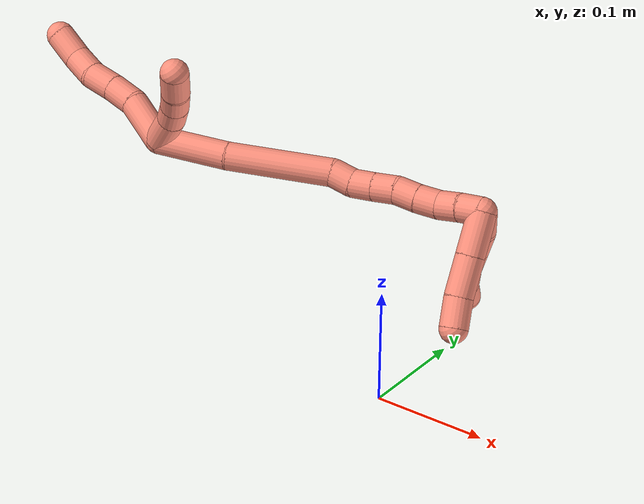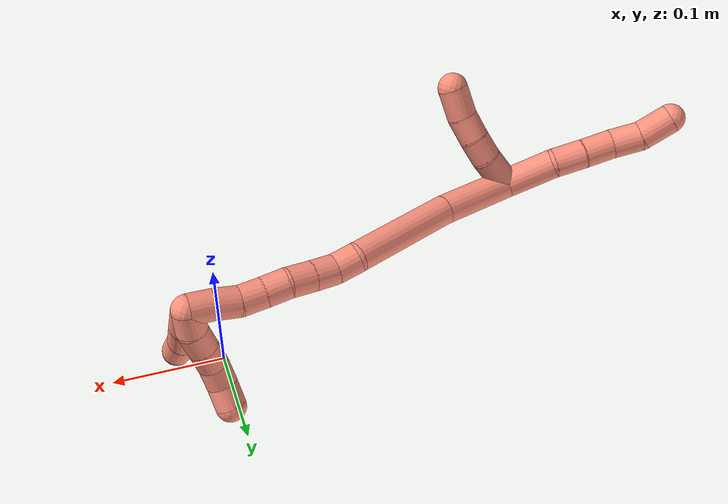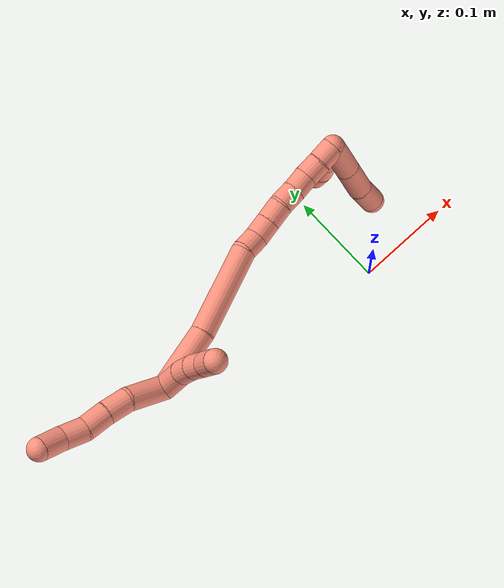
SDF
<sdf version="1.7">
 <world name="default">
  <model name="16">
   <static>0</static>
   <link name="16">
    <collision name="collision-cylinder-e_1_2_8">
     <pose>-0.012615 0.01103 0.014566 -0.648115 -0.604277 0.208627</pose>
     <geometry><cylinder><radius>0.0125</radius><length>0.044406</length></cylinder></geometry>
     <surface>
      <friction><ode><mu>1.16</mu><mu2>1.16</mu2><slip1>0</slip1><slip2>0</slip2></ode></friction>
      <contact><ode><kp>1e+06</kp><kd>1</kd><max_vel>0</max_vel><min_depth>0.001</min_depth></ode></contact>
     </surface>
    </collision>
    <visual name="visual-cylinder-e_1_2_8">
     <pose>-0.012615 0.01103 0.014566 -0.648115 -0.604277 0.208627</pose>
     <geometry><cylinder><radius>0.0125</radius><length>0.044406</length></cylinder></geometry>
     <material><ambient>1 0.576471 0.494118 1</ambient></material>
    </visual>
    <collision name="collision-cylinder-e_2_8_9">
     <pose>-0.035156 0.025696 0.036744 -0.445621 -0.866387 0.208814</pose>
     <geometry><cylinder><radius>0.0125</radius><length>0.026052</length></cylinder></geometry>
     <surface>
      <friction><ode><mu>1.16</mu><mu2>1.16</mu2><slip1>0</slip1><slip2>0</slip2></ode></friction>
      <contact><ode><kp>1e+06</kp><kd>1</kd><max_vel>0</max_vel><min_depth>0.001</min_depth></ode></contact>
     </surface>
    </collision>
    <visual name="visual-cylinder-e_2_8_9">
     <pose>-0.035156 0.025696 0.036744 -0.445621 -0.866387 0.208814</pose>
     <geometry><cylinder><radius>0.0125</radius><length>0.026052</length></cylinder></geometry>
     <material><ambient>1 0.576471 0.494118 1</ambient></material>
    </visual>
    <collision name="collision-cylinder-e_3_9_10">
     <pose>-0.055233 0.031944 0.052118 -0.324662 -0.891919 0.156274</pose>
     <geometry><cylinder><radius>0.0125</radius><length>0.026088</length></cylinder></geometry>
     <surface>
      <friction><ode><mu>1.16</mu><mu2>1.16</mu2><slip1>0</slip1><slip2>0</slip2></ode></friction>
      <contact><ode><kp>1e+06</kp><kd>1</kd><max_vel>0</max_vel><min_depth>0.001</min_depth></ode></contact>
     </surface>
    </collision>
    <visual name="visual-cylinder-e_3_9_10">
     <pose>-0.055233 0.031944 0.052118 -0.324662 -0.891919 0.156274</pose>
     <geometry><cylinder><radius>0.0125</radius><length>0.026088</length></cylinder></geometry>
     <material><ambient>1 0.576471 0.494118 1</ambient></material>
    </visual>
    <collision name="collision-cylinder-e_4_10_11">
     <pose>-0.074368 0.040232 0.066996 -0.673255 -0.778888 0.285289</pose>
     <geometry><cylinder><radius>0.0125</radius><length>0.025575</length></cylinder></geometry>
     <surface>
      <friction><ode><mu>1.16</mu><mu2>1.16</mu2><slip1>0</slip1><slip2>0</slip2></ode></friction>
      <contact><ode><kp>1e+06</kp><kd>1</kd><max_vel>0</max_vel><min_depth>0.001</min_depth></ode></contact>
     </surface>
    </collision>
    <visual name="visual-cylinder-e_4_10_11">
     <pose>-0.074368 0.040232 0.066996 -0.673255 -0.778888 0.285289</pose>
     <geometry><cylinder><radius>0.0125</radius><length>0.025575</length></cylinder></geometry>
     <material><ambient>1 0.576471 0.494118 1</ambient></material>
    </visual>
    <collision name="collision-cylinder-e_5_11_6">
     <pose>-0.090541 0.051421 0.084704 -0.479956 -0.541904 0.135735</pose>
     <geometry><cylinder><radius>0.0125</radius><length>0.027879</length></cylinder></geometry>
     <surface>
      <friction><ode><mu>1.16</mu><mu2>1.16</mu2><slip1>0</slip1><slip2>0</slip2></ode></friction>
      <contact><ode><kp>1e+06</kp><kd>1</kd><max_vel>0</max_vel><min_depth>0.001</min_depth></ode></contact>
     </surface>
    </collision>
    <visual name="visual-cylinder-e_5_11_6">
     <pose>-0.090541 0.051421 0.084704 -0.479956 -0.541904 0.135735</pose>
     <geometry><cylinder><radius>0.0125</radius><length>0.027879</length></cylinder></geometry>
     <material><ambient>1 0.576471 0.494118 1</ambient></material>
    </visual>
    <collision name="collision-cylinder-e_1_2_12">
     <pose>0.01442 0.001788 0.007718 -0.227651 1.0684 -0.135052</pose>
     <geometry><cylinder><radius>0.0125</radius><length>0.032906</length></cylinder></geometry>
     <surface>
      <friction><ode><mu>1.16</mu><mu2>1.16</mu2><slip1>0</slip1><slip2>0</slip2></ode></friction>
      <contact><ode><kp>1e+06</kp><kd>1</kd><max_vel>0</max_vel><min_depth>0.001</min_depth></ode></contact>
     </surface>
    </collision>
    <visual name="visual-cylinder-e_1_2_12">
     <pose>0.01442 0.001788 0.007718 -0.227651 1.0684 -0.135052</pose>
     <geometry><cylinder><radius>0.0125</radius><length>0.032906</length></cylinder></geometry>
     <material><ambient>1 0.576471 0.494118 1</ambient></material>
    </visual>
    <collision name="collision-cylinder-e_2_12_13">
     <pose>0.037184 0.003315 0.021537 0.042834 0.939017 0.021734</pose>
     <geometry><cylinder><radius>0.0125</radius><length>0.02068</length></cylinder></geometry>
     <surface>
      <friction><ode><mu>1.16</mu><mu2>1.16</mu2><slip1>0</slip1><slip2>0</slip2></ode></friction>
      <contact><ode><kp>1e+06</kp><kd>1</kd><max_vel>0</max_vel><min_depth>0.001</min_depth></ode></contact>
     </surface>
    </collision>
    <visual name="visual-cylinder-e_2_12_13">
     <pose>0.037184 0.003315 0.021537 0.042834 0.939017 0.021734</pose>
     <geometry><cylinder><radius>0.0125</radius><length>0.02068</length></cylinder></geometry>
     <material><ambient>1 0.576471 0.494118 1</ambient></material>
    </visual>
    <collision name="collision-cylinder-e_3_13_14">
     <pose>0.053497 0.001886 0.034517 0.168077 0.851666 0.07638</pose>
     <geometry><cylinder><radius>0.0125</radius><length>0.021182</length></cylinder></geometry>
     <surface>
      <friction><ode><mu>1.16</mu><mu2>1.16</mu2><slip1>0</slip1><slip2>0</slip2></ode></friction>
      <contact><ode><kp>1e+06</kp><kd>1</kd><max_vel>0</max_vel><min_depth>0.001</min_depth></ode></contact>
     </surface>
    </collision>
    <visual name="visual-cylinder-e_3_13_14">
     <pose>0.053497 0.001886 0.034517 0.168077 0.851666 0.07638</pose>
     <geometry><cylinder><radius>0.0125</radius><length>0.021182</length></cylinder></geometry>
     <material><ambient>1 0.576471 0.494118 1</ambient></material>
    </visual>
    <collision name="collision-cylinder-e_4_14_5">
     <pose>0.069721 0.000678 0.050935 0.004295 0.713314 0.0016</pose>
     <geometry><cylinder><radius>0.0125</radius><length>0.025231</length></cylinder></geometry>
     <surface>
      <friction><ode><mu>1.16</mu><mu2>1.16</mu2><slip1>0</slip1><slip2>0</slip2></ode></friction>
      <contact><ode><kp>1e+06</kp><kd>1</kd><max_vel>0</max_vel><min_depth>0.001</min_depth></ode></contact>
     </surface>
    </collision>
    <visual name="visual-cylinder-e_4_14_5">
     <pose>0.069721 0.000678 0.050935 0.004295 0.713314 0.0016</pose>
     <geometry><cylinder><radius>0.0125</radius><length>0.025231</length></cylinder></geometry>
     <material><ambient>1 0.576471 0.494118 1</ambient></material>
    </visual>
    <collision name="collision-cylinder-e_1_2_15">
     <pose>0.026731 0.004005 -0.018469 -2.92806 0.955382 -2.7333</pose>
     <geometry><cylinder><radius>0.0125</radius><length>0.065473</length></cylinder></geometry>
     <surface>
      <friction><ode><mu>1.16</mu><mu2>1.16</mu2><slip1>0</slip1><slip2>0</slip2></ode></friction>
      <contact><ode><kp>1e+06</kp><kd>1</kd><max_vel>0</max_vel><min_depth>0.001</min_depth></ode></contact>
     </surface>
    </collision>
    <visual name="visual-cylinder-e_1_2_15">
     <pose>0.026731 0.004005 -0.018469 -2.92806 0.955382 -2.7333</pose>
     <geometry><cylinder><radius>0.0125</radius><length>0.065473</length></cylinder></geometry>
     <material><ambient>1 0.576471 0.494118 1</ambient></material>
    </visual>
    <collision name="collision-cylinder-e_2_15_16">
     <pose>0.089655 0.019481 -0.064213 -2.74348 0.88548 -2.33705</pose>
     <geometry><cylinder><radius>0.0125</radius><length>0.093497</length></cylinder></geometry>
     <surface>
      <friction><ode><mu>1.16</mu><mu2>1.16</mu2><slip1>0</slip1><slip2>0</slip2></ode></friction>
      <contact><ode><kp>1e+06</kp><kd>1</kd><max_vel>0</max_vel><min_depth>0.001</min_depth></ode></contact>
     </surface>
    </collision>
    <visual name="visual-cylinder-e_2_15_16">
     <pose>0.089655 0.019481 -0.064213 -2.74348 0.88548 -2.33705</pose>
     <geometry><cylinder><radius>0.0125</radius><length>0.093497</length></cylinder></geometry>
     <material><ambient>1 0.576471 0.494118 1</ambient></material>
    </visual>
    <collision name="collision-cylinder-e_3_16_17">
     <pose>0.133093 0.030326 -0.098388 3.05121 0.807696 2.93073</pose>
     <geometry><cylinder><radius>0.0125</radius><length>0.020051</length></cylinder></geometry>
     <surface>
      <friction><ode><mu>1.16</mu><mu2>1.16</mu2><slip1>0</slip1><slip2>0</slip2></ode></friction>
      <contact><ode><kp>1e+06</kp><kd>1</kd><max_vel>0</max_vel><min_depth>0.001</min_depth></ode></contact>
     </surface>
    </collision>
    <visual name="visual-cylinder-e_3_16_17">
     <pose>0.133093 0.030326 -0.098388 3.05121 0.807696 2.93073</pose>
     <geometry><cylinder><radius>0.0125</radius><length>0.020051</length></cylinder></geometry>
     <material><ambient>1 0.576471 0.494118 1</ambient></material>
    </visual>
    <collision name="collision-cylinder-e_4_17_18">
     <pose>0.149157 0.030767 -0.11011 -2.92388 1.0603 -2.77291</pose>
     <geometry><cylinder><radius>0.0125</radius><length>0.020213</length></cylinder></geometry>
     <surface>
      <friction><ode><mu>1.16</mu><mu2>1.16</mu2><slip1>0</slip1><slip2>0</slip2></ode></friction>
      <contact><ode><kp>1e+06</kp><kd>1</kd><max_vel>0</max_vel><min_depth>0.001</min_depth></ode></contact>
     </surface>
    </collision>
    <visual name="visual-cylinder-e_4_17_18">
     <pose>0.149157 0.030767 -0.11011 -2.92388 1.0603 -2.77291</pose>
     <geometry><cylinder><radius>0.0125</radius><length>0.020213</length></cylinder></geometry>
     <material><ambient>1 0.576471 0.494118 1</ambient></material>
    </visual>
    <collision name="collision-cylinder-e_5_18_19">
     <pose>0.167134 0.033023 -0.11959 -2.89163 1.08746 -2.73177</pose>
     <geometry><cylinder><radius>0.0125</radius><length>0.020687</length></cylinder></geometry>
     <surface>
      <friction><ode><mu>1.16</mu><mu2>1.16</mu2><slip1>0</slip1><slip2>0</slip2></ode></friction>
      <contact><ode><kp>1e+06</kp><kd>1</kd><max_vel>0</max_vel><min_depth>0.001</min_depth></ode></contact>
     </surface>
    </collision>
    <visual name="visual-cylinder-e_5_18_19">
     <pose>0.167134 0.033023 -0.11959 -2.89163 1.08746 -2.73177</pose>
     <geometry><cylinder><radius>0.0125</radius><length>0.020687</length></cylinder></geometry>
     <material><ambient>1 0.576471 0.494118 1</ambient></material>
    </visual>
    <collision name="collision-cylinder-e_6_19_20">
     <pose>0.184355 0.033829 -0.130161 3.07688 0.936964 3.01385</pose>
     <geometry><cylinder><radius>0.0125</radius><length>0.020013</length></cylinder></geometry>
     <surface>
      <friction><ode><mu>1.16</mu><mu2>1.16</mu2><slip1>0</slip1><slip2>0</slip2></ode></friction>
      <contact><ode><kp>1e+06</kp><kd>1</kd><max_vel>0</max_vel><min_depth>0.001</min_depth></ode></contact>
     </surface>
    </collision>
    <visual name="visual-cylinder-e_6_19_20">
     <pose>0.184355 0.033829 -0.130161 3.07688 0.936964 3.01385</pose>
     <geometry><cylinder><radius>0.0125</radius><length>0.020013</length></cylinder></geometry>
     <material><ambient>1 0.576471 0.494118 1</ambient></material>
    </visual>
    <collision name="collision-cylinder-e_7_20_21">
     <pose>0.200801 0.033794 -0.141537 -3.07796 0.992352 -3.02415</pose>
     <geometry><cylinder><radius>0.0125</radius><length>0.020022</length></cylinder></geometry>
     <surface>
      <friction><ode><mu>1.16</mu><mu2>1.16</mu2><slip1>0</slip1><slip2>0</slip2></ode></friction>
      <contact><ode><kp>1e+06</kp><kd>1</kd><max_vel>0</max_vel><min_depth>0.001</min_depth></ode></contact>
     </surface>
    </collision>
    <visual name="visual-cylinder-e_7_20_21">
     <pose>0.200801 0.033794 -0.141537 -3.07796 0.992352 -3.02415</pose>
     <geometry><cylinder><radius>0.0125</radius><length>0.020022</length></cylinder></geometry>
     <material><ambient>1 0.576471 0.494118 1</ambient></material>
    </visual>
    <collision name="collision-cylinder-e_8_21_22">
     <pose>0.218607 0.034413 -0.15035 -3.06076 1.2282 -3.02701</pose>
     <geometry><cylinder><radius>0.0125</radius><length>0.020011</length></cylinder></geometry>
     <surface>
      <friction><ode><mu>1.16</mu><mu2>1.16</mu2><slip1>0</slip1><slip2>0</slip2></ode></friction>
      <contact><ode><kp>1e+06</kp><kd>1</kd><max_vel>0</max_vel><min_depth>0.001</min_depth></ode></contact>
     </surface>
    </collision>
    <visual name="visual-cylinder-e_8_21_22">
     <pose>0.218607 0.034413 -0.15035 -3.06076 1.2282 -3.02701</pose>
     <geometry><cylinder><radius>0.0125</radius><length>0.020011</length></cylinder></geometry>
     <material><ambient>1 0.576471 0.494118 1</ambient></material>
    </visual>
    <collision name="collision-cylinder-e_9_22_1">
     <pose>0.237117 0.035021 -0.157903 -3.06166 1.13628 -3.01647</pose>
     <geometry><cylinder><radius>0.0125</radius><length>0.020032</length></cylinder></geometry>
     <surface>
      <friction><ode><mu>1.16</mu><mu2>1.16</mu2><slip1>0</slip1><slip2>0</slip2></ode></friction>
      <contact><ode><kp>1e+06</kp><kd>1</kd><max_vel>0</max_vel><min_depth>0.001</min_depth></ode></contact>
     </surface>
    </collision>
    <visual name="visual-cylinder-e_9_22_1">
     <pose>0.237117 0.035021 -0.157903 -3.06166 1.13628 -3.01647</pose>
     <geometry><cylinder><radius>0.0125</radius><length>0.020032</length></cylinder></geometry>
     <material><ambient>1 0.576471 0.494118 1</ambient></material>
    </visual>
    <collision name="collision-cylinder-e_1_1_23">
     <pose>0.240778 0.020146 -0.172225 2.15781 -0.288578 -0.529606</pose>
     <geometry><cylinder><radius>0.0125</radius><length>0.038116</length></cylinder></geometry>
     <surface>
      <friction><ode><mu>1.16</mu><mu2>1.16</mu2><slip1>0</slip1><slip2>0</slip2></ode></friction>
      <contact><ode><kp>1e+06</kp><kd>1</kd><max_vel>0</max_vel><min_depth>0.001</min_depth></ode></contact>
     </surface>
    </collision>
    <visual name="visual-cylinder-e_1_1_23">
     <pose>0.240778 0.020146 -0.172225 2.15781 -0.288578 -0.529606</pose>
     <geometry><cylinder><radius>0.0125</radius><length>0.038116</length></cylinder></geometry>
     <material><ambient>1 0.576471 0.494118 1</ambient></material>
    </visual>
    <collision name="collision-cylinder-e_2_23_24">
     <pose>0.23031 -0.009187 -0.191729 2.15732 -0.289166 -0.530351</pose>
     <geometry><cylinder><radius>0.0125</radius><length>0.035379</length></cylinder></geometry>
     <surface>
      <friction><ode><mu>1.16</mu><mu2>1.16</mu2><slip1>0</slip1><slip2>0</slip2></ode></friction>
      <contact><ode><kp>1e+06</kp><kd>1</kd><max_vel>0</max_vel><min_depth>0.001</min_depth></ode></contact>
     </surface>
    </collision>
    <visual name="visual-cylinder-e_2_23_24">
     <pose>0.23031 -0.009187 -0.191729 2.15732 -0.289166 -0.530351</pose>
     <geometry><cylinder><radius>0.0125</radius><length>0.035379</length></cylinder></geometry>
     <material><ambient>1 0.576471 0.494118 1</ambient></material>
    </visual>
    <collision name="collision-cylinder-e_3_24_4">
     <pose>0.223173 -0.033935 -0.208749 2.19389 -0.158609 -0.307489</pose>
     <geometry><cylinder><radius>0.0125</radius><length>0.026505</length></cylinder></geometry>
     <surface>
      <friction><ode><mu>1.16</mu><mu2>1.16</mu2><slip1>0</slip1><slip2>0</slip2></ode></friction>
      <contact><ode><kp>1e+06</kp><kd>1</kd><max_vel>0</max_vel><min_depth>0.001</min_depth></ode></contact>
     </surface>
    </collision>
    <visual name="visual-cylinder-e_3_24_4">
     <pose>0.223173 -0.033935 -0.208749 2.19389 -0.158609 -0.307489</pose>
     <geometry><cylinder><radius>0.0125</radius><length>0.026505</length></cylinder></geometry>
     <material><ambient>1 0.576471 0.494118 1</ambient></material>
    </visual>
    <collision name="collision-cylinder-e_1_1_25">
     <pose>0.241137 0.032564 -0.170263 2.8116 -0.531181 -2.043</pose>
     <geometry><cylinder><radius>0.0125</radius><length>0.02</length></cylinder></geometry>
     <surface>
      <friction><ode><mu>1.16</mu><mu2>1.16</mu2><slip1>0</slip1><slip2>0</slip2></ode></friction>
      <contact><ode><kp>1e+06</kp><kd>1</kd><max_vel>0</max_vel><min_depth>0.001</min_depth></ode></contact>
     </surface>
    </collision>
    <visual name="visual-cylinder-e_1_1_25">
     <pose>0.241137 0.032564 -0.170263 2.8116 -0.531181 -2.043</pose>
     <geometry><cylinder><radius>0.0125</radius><length>0.02</length></cylinder></geometry>
     <material><ambient>1 0.576471 0.494118 1</ambient></material>
    </visual>
    <collision name="collision-cylinder-e_2_25_26">
     <pose>0.229098 0.026567 -0.184832 2.67834 -0.771645 -2.08942</pose>
     <geometry><cylinder><radius>0.0125</radius><length>0.02</length></cylinder></geometry>
     <surface>
      <friction><ode><mu>1.16</mu><mu2>1.16</mu2><slip1>0</slip1><slip2>0</slip2></ode></friction>
      <contact><ode><kp>1e+06</kp><kd>1</kd><max_vel>0</max_vel><min_depth>0.001</min_depth></ode></contact>
     </surface>
    </collision>
    <visual name="visual-cylinder-e_2_25_26">
     <pose>0.229098 0.026567 -0.184832 2.67834 -0.771645 -2.08942</pose>
     <geometry><cylinder><radius>0.0125</radius><length>0.02</length></cylinder></geometry>
     <material><ambient>1 0.576471 0.494118 1</ambient></material>
    </visual>
    <collision name="collision-cylinder-e_3_26_27">
     <pose>0.215195 0.020078 -0.197661 2.66827 -0.765609 -2.06228</pose>
     <geometry><cylinder><radius>0.0125</radius><length>0.02</length></cylinder></geometry>
     <surface>
      <friction><ode><mu>1.16</mu><mu2>1.16</mu2><slip1>0</slip1><slip2>0</slip2></ode></friction>
      <contact><ode><kp>1e+06</kp><kd>1</kd><max_vel>0</max_vel><min_depth>0.001</min_depth></ode></contact>
     </surface>
    </collision>
    <visual name="visual-cylinder-e_3_26_27">
     <pose>0.215195 0.020078 -0.197661 2.66827 -0.765609 -2.06228</pose>
     <geometry><cylinder><radius>0.0125</radius><length>0.02</length></cylinder></geometry>
     <material><ambient>1 0.576471 0.494118 1</ambient></material>
    </visual>
    <collision name="collision-cylinder-e_4_27_28">
     <pose>0.201807 0.015337 -0.211573 2.95001 -0.702096 -2.62842</pose>
     <geometry><cylinder><radius>0.0125</radius><length>0.02</length></cylinder></geometry>
     <surface>
      <friction><ode><mu>1.16</mu><mu2>1.16</mu2><slip1>0</slip1><slip2>0</slip2></ode></friction>
      <contact><ode><kp>1e+06</kp><kd>1</kd><max_vel>0</max_vel><min_depth>0.001</min_depth></ode></contact>
     </surface>
    </collision>
    <visual name="visual-cylinder-e_4_27_28">
     <pose>0.201807 0.015337 -0.211573 2.95001 -0.702096 -2.62842</pose>
     <geometry><cylinder><radius>0.0125</radius><length>0.02</length></cylinder></geometry>
     <material><ambient>1 0.576471 0.494118 1</ambient></material>
    </visual>
    <collision name="collision-cylinder-e_5_28_3">
     <pose>0.189452 0.015675 -0.226944 -2.91789 -0.630627 2.47836</pose>
     <geometry><cylinder><radius>0.0125</radius><length>0.02</length></cylinder></geometry>
     <surface>
      <friction><ode><mu>1.16</mu><mu2>1.16</mu2><slip1>0</slip1><slip2>0</slip2></ode></friction>
      <contact><ode><kp>1e+06</kp><kd>1</kd><max_vel>0</max_vel><min_depth>0.001</min_depth></ode></contact>
     </surface>
    </collision>
    <visual name="visual-cylinder-e_5_28_3">
     <pose>0.189452 0.015675 -0.226944 -2.91789 -0.630627 2.47836</pose>
     <geometry><cylinder><radius>0.0125</radius><length>0.02</length></cylinder></geometry>
     <material><ambient>1 0.576471 0.494118 1</ambient></material>
    </visual>
    <collision name="collision-sphere-3">
     <pose>0.183556 0.017467 -0.234819 0 -0 0</pose>
     <geometry><sphere><radius>0.0125</radius></sphere></geometry>
     <surface>
      <friction><ode><mu>1.16</mu><mu2>1.16</mu2><slip1>0</slip1><slip2>0</slip2></ode></friction>
      <contact><ode><kp>1e+06</kp><kd>1</kd><max_vel>0</max_vel><min_depth>0.001</min_depth></ode></contact>
     </surface>
    </collision>
    <visual name="visual-sphere-3">
     <pose>0.183556 0.017467 -0.234819 0 -0 0</pose>
     <geometry><sphere><radius>0.0125</radius></sphere></geometry>
     <material><ambient>1 0.576471 0.494118 1</ambient></material>
    </visual>
    <collision name="collision-sphere-28">
     <pose>0.195349 0.013884 -0.219068 0 -0 0</pose>
     <geometry><sphere><radius>0.0125</radius></sphere></geometry>
     <surface>
      <friction><ode><mu>1.16</mu><mu2>1.16</mu2><slip1>0</slip1><slip2>0</slip2></ode></friction>
      <contact><ode><kp>1e+06</kp><kd>1</kd><max_vel>0</max_vel><min_depth>0.001</min_depth></ode></contact>
     </surface>
    </collision>
    <visual name="visual-sphere-28">
     <pose>0.195349 0.013884 -0.219068 0 -0 0</pose>
     <geometry><sphere><radius>0.0125</radius></sphere></geometry>
     <material><ambient>1 0.576471 0.494118 1</ambient></material>
    </visual>
    <collision name="collision-sphere-27">
     <pose>0.208265 0.016791 -0.204078 0 -0 0</pose>
     <geometry><sphere><radius>0.0125</radius></sphere></geometry>
     <surface>
      <friction><ode><mu>1.16</mu><mu2>1.16</mu2><slip1>0</slip1><slip2>0</slip2></ode></friction>
      <contact><ode><kp>1e+06</kp><kd>1</kd><max_vel>0</max_vel><min_depth>0.001</min_depth></ode></contact>
     </surface>
    </collision>
    <visual name="visual-sphere-27">
     <pose>0.208265 0.016791 -0.204078 0 -0 0</pose>
     <geometry><sphere><radius>0.0125</radius></sphere></geometry>
     <material><ambient>1 0.576471 0.494118 1</ambient></material>
    </visual>
    <collision name="collision-sphere-26">
     <pose>0.222125 0.023364 -0.191244 0 -0 0</pose>
     <geometry><sphere><radius>0.0125</radius></sphere></geometry>
     <surface>
      <friction><ode><mu>1.16</mu><mu2>1.16</mu2><slip1>0</slip1><slip2>0</slip2></ode></friction>
      <contact><ode><kp>1e+06</kp><kd>1</kd><max_vel>0</max_vel><min_depth>0.001</min_depth></ode></contact>
     </surface>
    </collision>
    <visual name="visual-sphere-26">
     <pose>0.222125 0.023364 -0.191244 0 -0 0</pose>
     <geometry><sphere><radius>0.0125</radius></sphere></geometry>
     <material><ambient>1 0.576471 0.494118 1</ambient></material>
    </visual>
    <collision name="collision-sphere-25">
     <pose>0.236071 0.02977 -0.17842 0 -0 0</pose>
     <geometry><sphere><radius>0.0125</radius></sphere></geometry>
     <surface>
      <friction><ode><mu>1.16</mu><mu2>1.16</mu2><slip1>0</slip1><slip2>0</slip2></ode></friction>
      <contact><ode><kp>1e+06</kp><kd>1</kd><max_vel>0</max_vel><min_depth>0.001</min_depth></ode></contact>
     </surface>
    </collision>
    <visual name="visual-sphere-25">
     <pose>0.236071 0.02977 -0.17842 0 -0 0</pose>
     <geometry><sphere><radius>0.0125</radius></sphere></geometry>
     <material><ambient>1 0.576471 0.494118 1</ambient></material>
    </visual>
    <collision name="collision-sphere-4">
     <pose>0.22108 -0.044562 -0.216385 0 -0 0</pose>
     <geometry><sphere><radius>0.0125</radius></sphere></geometry>
     <surface>
      <friction><ode><mu>1.16</mu><mu2>1.16</mu2><slip1>0</slip1><slip2>0</slip2></ode></friction>
      <contact><ode><kp>1e+06</kp><kd>1</kd><max_vel>0</max_vel><min_depth>0.001</min_depth></ode></contact>
     </surface>
    </collision>
    <visual name="visual-sphere-4">
     <pose>0.22108 -0.044562 -0.216385 0 -0 0</pose>
     <geometry><sphere><radius>0.0125</radius></sphere></geometry>
     <material><ambient>1 0.576471 0.494118 1</ambient></material>
    </visual>
    <collision name="collision-sphere-24">
     <pose>0.225266 -0.023308 -0.201113 0 -0 0</pose>
     <geometry><sphere><radius>0.0125</radius></sphere></geometry>
     <surface>
      <friction><ode><mu>1.16</mu><mu2>1.16</mu2><slip1>0</slip1><slip2>0</slip2></ode></friction>
      <contact><ode><kp>1e+06</kp><kd>1</kd><max_vel>0</max_vel><min_depth>0.001</min_depth></ode></contact>
     </surface>
    </collision>
    <visual name="visual-sphere-24">
     <pose>0.225266 -0.023308 -0.201113 0 -0 0</pose>
     <geometry><sphere><radius>0.0125</radius></sphere></geometry>
     <material><ambient>1 0.576471 0.494118 1</ambient></material>
    </visual>
    <collision name="collision-sphere-23">
     <pose>0.235355 0.004935 -0.182344 0 -0 0</pose>
     <geometry><sphere><radius>0.0125</radius></sphere></geometry>
     <surface>
      <friction><ode><mu>1.16</mu><mu2>1.16</mu2><slip1>0</slip1><slip2>0</slip2></ode></friction>
      <contact><ode><kp>1e+06</kp><kd>1</kd><max_vel>0</max_vel><min_depth>0.001</min_depth></ode></contact>
     </surface>
    </collision>
    <visual name="visual-sphere-23">
     <pose>0.235355 0.004935 -0.182344 0 -0 0</pose>
     <geometry><sphere><radius>0.0125</radius></sphere></geometry>
     <material><ambient>1 0.576471 0.494118 1</ambient></material>
    </visual>
    <collision name="collision-sphere-1">
     <pose>0.246202 0.035358 -0.162106 0 -0 0</pose>
     <geometry><sphere><radius>0.0125</radius></sphere></geometry>
     <surface>
      <friction><ode><mu>1.16</mu><mu2>1.16</mu2><slip1>0</slip1><slip2>0</slip2></ode></friction>
      <contact><ode><kp>1e+06</kp><kd>1</kd><max_vel>0</max_vel><min_depth>0.001</min_depth></ode></contact>
     </surface>
    </collision>
    <visual name="visual-sphere-1">
     <pose>0.246202 0.035358 -0.162106 0 -0 0</pose>
     <geometry><sphere><radius>0.0125</radius></sphere></geometry>
     <material><ambient>1 0.576471 0.494118 1</ambient></material>
    </visual>
    <collision name="collision-sphere-22">
     <pose>0.228031 0.034684 -0.1537 0 -0 0</pose>
     <geometry><sphere><radius>0.0125</radius></sphere></geometry>
     <surface>
      <friction><ode><mu>1.16</mu><mu2>1.16</mu2><slip1>0</slip1><slip2>0</slip2></ode></friction>
      <contact><ode><kp>1e+06</kp><kd>1</kd><max_vel>0</max_vel><min_depth>0.001</min_depth></ode></contact>
     </surface>
    </collision>
    <visual name="visual-sphere-22">
     <pose>0.228031 0.034684 -0.1537 0 -0 0</pose>
     <geometry><sphere><radius>0.0125</radius></sphere></geometry>
     <material><ambient>1 0.576471 0.494118 1</ambient></material>
    </visual>
    <collision name="collision-sphere-21">
     <pose>0.209183 0.034142 -0.146999 0 -0 0</pose>
     <geometry><sphere><radius>0.0125</radius></sphere></geometry>
     <surface>
      <friction><ode><mu>1.16</mu><mu2>1.16</mu2><slip1>0</slip1><slip2>0</slip2></ode></friction>
      <contact><ode><kp>1e+06</kp><kd>1</kd><max_vel>0</max_vel><min_depth>0.001</min_depth></ode></contact>
     </surface>
    </collision>
    <visual name="visual-sphere-21">
     <pose>0.209183 0.034142 -0.146999 0 -0 0</pose>
     <geometry><sphere><radius>0.0125</radius></sphere></geometry>
     <material><ambient>1 0.576471 0.494118 1</ambient></material>
    </visual>
    <collision name="collision-sphere-6">
     <pose>-0.09773 0.056935 0.095297 0 -0 0</pose>
     <geometry><sphere><radius>0.0125</radius></sphere></geometry>
     <surface>
      <friction><ode><mu>1.16</mu><mu2>1.16</mu2><slip1>0</slip1><slip2>0</slip2></ode></friction>
      <contact><ode><kp>1e+06</kp><kd>1</kd><max_vel>0</max_vel><min_depth>0.001</min_depth></ode></contact>
     </surface>
    </collision>
    <visual name="visual-sphere-6">
     <pose>-0.09773 0.056935 0.095297 0 -0 0</pose>
     <geometry><sphere><radius>0.0125</radius></sphere></geometry>
     <material><ambient>1 0.576471 0.494118 1</ambient></material>
    </visual>
    <collision name="collision-sphere-11">
     <pose>-0.083351 0.045906 0.074111 0 -0 0</pose>
     <geometry><sphere><radius>0.0125</radius></sphere></geometry>
     <surface>
      <friction><ode><mu>1.16</mu><mu2>1.16</mu2><slip1>0</slip1><slip2>0</slip2></ode></friction>
      <contact><ode><kp>1e+06</kp><kd>1</kd><max_vel>0</max_vel><min_depth>0.001</min_depth></ode></contact>
     </surface>
    </collision>
    <visual name="visual-sphere-11">
     <pose>-0.083351 0.045906 0.074111 0 -0 0</pose>
     <geometry><sphere><radius>0.0125</radius></sphere></geometry>
     <material><ambient>1 0.576471 0.494118 1</ambient></material>
    </visual>
    <collision name="collision-sphere-10">
     <pose>-0.065385 0.034557 0.059881 0 -0 0</pose>
     <geometry><sphere><radius>0.0125</radius></sphere></geometry>
     <surface>
      <friction><ode><mu>1.16</mu><mu2>1.16</mu2><slip1>0</slip1><slip2>0</slip2></ode></friction>
      <contact><ode><kp>1e+06</kp><kd>1</kd><max_vel>0</max_vel><min_depth>0.001</min_depth></ode></contact>
     </surface>
    </collision>
    <visual name="visual-sphere-10">
     <pose>-0.065385 0.034557 0.059881 0 -0 0</pose>
     <geometry><sphere><radius>0.0125</radius></sphere></geometry>
     <material><ambient>1 0.576471 0.494118 1</ambient></material>
    </visual>
    <collision name="collision-sphere-9">
     <pose>-0.045081 0.029332 0.044355 0 -0 0</pose>
     <geometry><sphere><radius>0.0125</radius></sphere></geometry>
     <surface>
      <friction><ode><mu>1.16</mu><mu2>1.16</mu2><slip1>0</slip1><slip2>0</slip2></ode></friction>
      <contact><ode><kp>1e+06</kp><kd>1</kd><max_vel>0</max_vel><min_depth>0.001</min_depth></ode></contact>
     </surface>
    </collision>
    <visual name="visual-sphere-9">
     <pose>-0.045081 0.029332 0.044355 0 -0 0</pose>
     <geometry><sphere><radius>0.0125</radius></sphere></geometry>
     <material><ambient>1 0.576471 0.494118 1</ambient></material>
    </visual>
    <collision name="collision-sphere-2">
     <geometry><sphere><radius>0.0125</radius></sphere></geometry>
     <surface>
      <friction><ode><mu>1.16</mu><mu2>1.16</mu2><slip1>0</slip1><slip2>0</slip2></ode></friction>
      <contact><ode><kp>1e+06</kp><kd>1</kd><max_vel>0</max_vel><min_depth>0.001</min_depth></ode></contact>
     </surface>
    </collision>
    <visual name="visual-sphere-2">
     <geometry><sphere><radius>0.0125</radius></sphere></geometry>
     <material><ambient>1 0.576471 0.494118 1</ambient></material>
    </visual>
    <collision name="collision-sphere-19">
     <pose>0.176292 0.034212 -0.124247 0 -0 0</pose>
     <geometry><sphere><radius>0.0125</radius></sphere></geometry>
     <surface>
      <friction><ode><mu>1.16</mu><mu2>1.16</mu2><slip1>0</slip1><slip2>0</slip2></ode></friction>
      <contact><ode><kp>1e+06</kp><kd>1</kd><max_vel>0</max_vel><min_depth>0.001</min_depth></ode></contact>
     </surface>
    </collision>
    <visual name="visual-sphere-19">
     <pose>0.176292 0.034212 -0.124247 0 -0 0</pose>
     <geometry><sphere><radius>0.0125</radius></sphere></geometry>
     <material><ambient>1 0.576471 0.494118 1</ambient></material>
    </visual>
    <collision name="collision-sphere-8">
     <pose>-0.02523 0.02206 0.029132 0 -0 0</pose>
     <geometry><sphere><radius>0.0125</radius></sphere></geometry>
     <surface>
      <friction><ode><mu>1.16</mu><mu2>1.16</mu2><slip1>0</slip1><slip2>0</slip2></ode></friction>
      <contact><ode><kp>1e+06</kp><kd>1</kd><max_vel>0</max_vel><min_depth>0.001</min_depth></ode></contact>
     </surface>
    </collision>
    <visual name="visual-sphere-8">
     <pose>-0.02523 0.02206 0.029132 0 -0 0</pose>
     <geometry><sphere><radius>0.0125</radius></sphere></geometry>
     <material><ambient>1 0.576471 0.494118 1</ambient></material>
    </visual>
    <collision name="collision-sphere-12">
     <pose>0.02884 0.003576 0.015436 0 -0 0</pose>
     <geometry><sphere><radius>0.0125</radius></sphere></geometry>
     <surface>
      <friction><ode><mu>1.16</mu><mu2>1.16</mu2><slip1>0</slip1><slip2>0</slip2></ode></friction>
      <contact><ode><kp>1e+06</kp><kd>1</kd><max_vel>0</max_vel><min_depth>0.001</min_depth></ode></contact>
     </surface>
    </collision>
    <visual name="visual-sphere-12">
     <pose>0.02884 0.003576 0.015436 0 -0 0</pose>
     <geometry><sphere><radius>0.0125</radius></sphere></geometry>
     <material><ambient>1 0.576471 0.494118 1</ambient></material>
    </visual>
    <collision name="collision-sphere-13">
     <pose>0.045528 0.003053 0.027638 0 -0 0</pose>
     <geometry><sphere><radius>0.0125</radius></sphere></geometry>
     <surface>
      <friction><ode><mu>1.16</mu><mu2>1.16</mu2><slip1>0</slip1><slip2>0</slip2></ode></friction>
      <contact><ode><kp>1e+06</kp><kd>1</kd><max_vel>0</max_vel><min_depth>0.001</min_depth></ode></contact>
     </surface>
    </collision>
    <visual name="visual-sphere-13">
     <pose>0.045528 0.003053 0.027638 0 -0 0</pose>
     <geometry><sphere><radius>0.0125</radius></sphere></geometry>
     <material><ambient>1 0.576471 0.494118 1</ambient></material>
    </visual>
    <collision name="collision-sphere-14">
     <pose>0.061465 0.000719 0.041395 0 -0 0</pose>
     <geometry><sphere><radius>0.0125</radius></sphere></geometry>
     <surface>
      <friction><ode><mu>1.16</mu><mu2>1.16</mu2><slip1>0</slip1><slip2>0</slip2></ode></friction>
      <contact><ode><kp>1e+06</kp><kd>1</kd><max_vel>0</max_vel><min_depth>0.001</min_depth></ode></contact>
     </surface>
    </collision>
    <visual name="visual-sphere-14">
     <pose>0.061465 0.000719 0.041395 0 -0 0</pose>
     <geometry><sphere><radius>0.0125</radius></sphere></geometry>
     <material><ambient>1 0.576471 0.494118 1</ambient></material>
    </visual>
    <collision name="collision-sphere-5">
     <pose>0.077976 0.000637 0.060475 0 -0 0</pose>
     <geometry><sphere><radius>0.0125</radius></sphere></geometry>
     <surface>
      <friction><ode><mu>1.16</mu><mu2>1.16</mu2><slip1>0</slip1><slip2>0</slip2></ode></friction>
      <contact><ode><kp>1e+06</kp><kd>1</kd><max_vel>0</max_vel><min_depth>0.001</min_depth></ode></contact>
     </surface>
    </collision>
    <visual name="visual-sphere-5">
     <pose>0.077976 0.000637 0.060475 0 -0 0</pose>
     <geometry><sphere><radius>0.0125</radius></sphere></geometry>
     <material><ambient>1 0.576471 0.494118 1</ambient></material>
    </visual>
    <collision name="collision-sphere-15">
     <pose>0.053461 0.00801 -0.036939 0 -0 0</pose>
     <geometry><sphere><radius>0.0125</radius></sphere></geometry>
     <surface>
      <friction><ode><mu>1.16</mu><mu2>1.16</mu2><slip1>0</slip1><slip2>0</slip2></ode></friction>
      <contact><ode><kp>1e+06</kp><kd>1</kd><max_vel>0</max_vel><min_depth>0.001</min_depth></ode></contact>
     </surface>
    </collision>
    <visual name="visual-sphere-15">
     <pose>0.053461 0.00801 -0.036939 0 -0 0</pose>
     <geometry><sphere><radius>0.0125</radius></sphere></geometry>
     <material><ambient>1 0.576471 0.494118 1</ambient></material>
    </visual>
    <collision name="collision-sphere-16">
     <pose>0.125848 0.030951 -0.091487 0 -0 0</pose>
     <geometry><sphere><radius>0.0125</radius></sphere></geometry>
     <surface>
      <friction><ode><mu>1.16</mu><mu2>1.16</mu2><slip1>0</slip1><slip2>0</slip2></ode></friction>
      <contact><ode><kp>1e+06</kp><kd>1</kd><max_vel>0</max_vel><min_depth>0.001</min_depth></ode></contact>
     </surface>
    </collision>
    <visual name="visual-sphere-16">
     <pose>0.125848 0.030951 -0.091487 0 -0 0</pose>
     <geometry><sphere><radius>0.0125</radius></sphere></geometry>
     <material><ambient>1 0.576471 0.494118 1</ambient></material>
    </visual>
    <collision name="collision-sphere-17">
     <pose>0.140339 0.029701 -0.105289 0 -0 0</pose>
     <geometry><sphere><radius>0.0125</radius></sphere></geometry>
     <surface>
      <friction><ode><mu>1.16</mu><mu2>1.16</mu2><slip1>0</slip1><slip2>0</slip2></ode></friction>
      <contact><ode><kp>1e+06</kp><kd>1</kd><max_vel>0</max_vel><min_depth>0.001</min_depth></ode></contact>
     </surface>
    </collision>
    <visual name="visual-sphere-17">
     <pose>0.140339 0.029701 -0.105289 0 -0 0</pose>
     <geometry><sphere><radius>0.0125</radius></sphere></geometry>
     <material><ambient>1 0.576471 0.494118 1</ambient></material>
    </visual>
    <collision name="collision-sphere-18">
     <pose>0.157975 0.031834 -0.114932 0 -0 0</pose>
     <geometry><sphere><radius>0.0125</radius></sphere></geometry>
     <surface>
      <friction><ode><mu>1.16</mu><mu2>1.16</mu2><slip1>0</slip1><slip2>0</slip2></ode></friction>
      <contact><ode><kp>1e+06</kp><kd>1</kd><max_vel>0</max_vel><min_depth>0.001</min_depth></ode></contact>
     </surface>
    </collision>
    <visual name="visual-sphere-18">
     <pose>0.157975 0.031834 -0.114932 0 -0 0</pose>
     <geometry><sphere><radius>0.0125</radius></sphere></geometry>
     <material><ambient>1 0.576471 0.494118 1</ambient></material>
    </visual>
    <collision name="collision-sphere-20">
     <pose>0.192418 0.033445 -0.136075 0 -0 0</pose>
     <geometry><sphere><radius>0.0125</radius></sphere></geometry>
     <surface>
      <friction><ode><mu>1.16</mu><mu2>1.16</mu2><slip1>0</slip1><slip2>0</slip2></ode></friction>
      <contact><ode><kp>1e+06</kp><kd>1</kd><max_vel>0</max_vel><min_depth>0.001</min_depth></ode></contact>
     </surface>
    </collision>
    <visual name="visual-sphere-20">
     <pose>0.192418 0.033445 -0.136075 0 -0 0</pose>
     <geometry><sphere><radius>0.0125</radius></sphere></geometry>
     <material><ambient>1 0.576471 0.494118 1</ambient></material>
    </visual>
    <inertial>
     <pose>0.103567 0.017504 -0.072597 0 -0 0</pose>
     <mass>0.75</mass>
     <inertia><ixx>-5.6e-05</ixx><ixy>0</ixy><ixz>0</ixz><iyy>7.8e-05</iyy><iyz>0</iyz><izz>-0.0001</izz></inertia>
    </inertial>
   </link>
   <pose>-0.255435 0.027712 0.154055 0.412932 -0.469378 -0.09839</pose>
  </model>
 </world>
</sdf>
